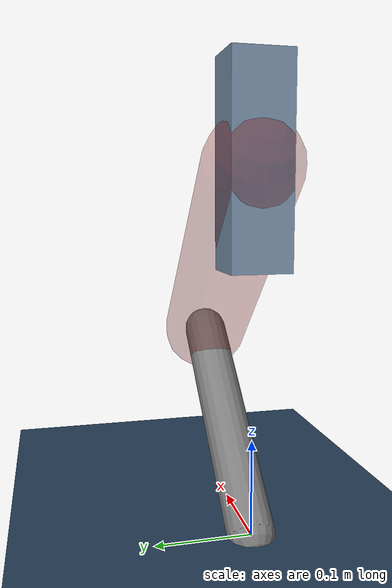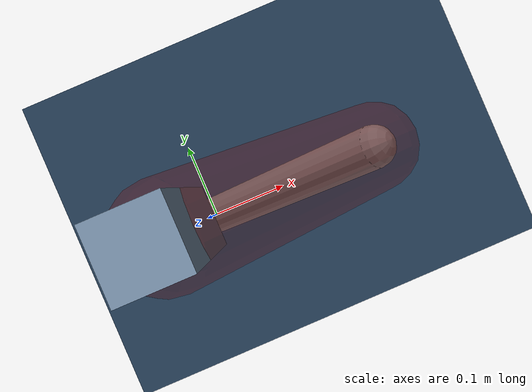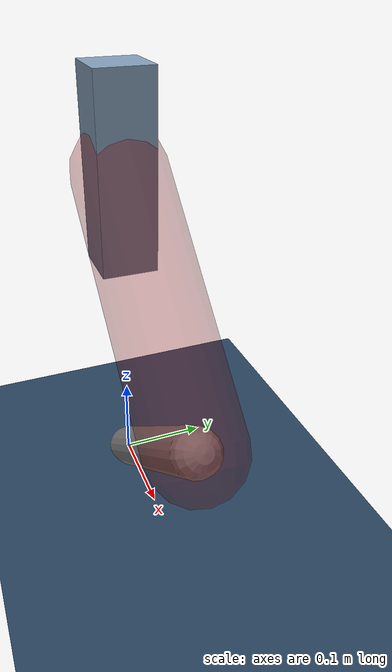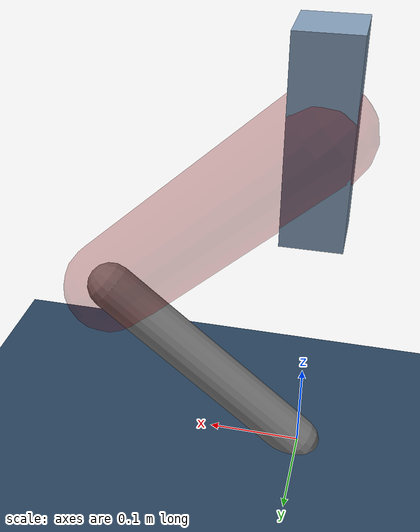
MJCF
<mujoco model="Hopper2D">
	<compiler inertiafromgeom="true" angle="radian" />
	<option timestep="0.001" integrator="implicit" cone="elliptic" solver="Newton" tolerance="1e-10" />

	<default>
		<geom contype="1" conaffinity="1" condim="3" friction="2 0.005 0.0001" solref="0.005 1" />
		<joint limited="true" damping="0.1" />
	</default>

	<asset>
		<texture name="skybox" type="skybox" builtin="gradient" rgb1=".4 .6 .8" rgb2="0 0 0" width="800" height="800" />
		<texture name="grid" type="2d" builtin="checker" rgb1=".1 .2 .3" rgb2=".2 .3 .4" width="300" height="300" mark="edge" markrgb=".2 .3 .4" />
		<material name="ground" texture="grid" texrepeat="1 1" texuniform="true" reflectance="0.1" />
		<material name="leg" rgba="0.5 0.6 0.7 1" />
	</asset>

	<worldbody>

		<geom name="floor" type="plane" size="5 5 0.25" material="ground" />

		<light directional="false" diffuse="0.8 0.8 0.8" specular="0.3 0.3 0.3" pos="0 0 2" dir="0 0 -1" />
		<light mode="targetbodycom" target="base" directional="false" diffuse="0.8 0.8 0.8" specular="0.3 0.3 0.3" pos="0 0 2" dir="0 0 -1" />

		<camera name="fixed" pos="0 -2 1" xyaxes="1 0 0 0 0 1" />
		<camera name="tracking" mode="trackcom" pos="0 -3 1" />

		<body name="root" pos="0 0 0.3702385764134294">
			<joint name="slide_x" type="slide" axis="1 0 0" range="-100 100" />
			<joint name="slide_z" type="slide" axis="0 0 1" range="0 10" />

			<body name="base" pos="0 0 0">
				<geom name="torso" type="box" size="0.03 0.03 0.1" mass="1.607" material="leg" />

				<body name="link1" pos="0 0 0" euler="0 0.7383151694181542 0">
					<joint type="hinge" axis="0 -1 0" pos="0 0 0" name="hinge1" limited="true" range="-3.14 3.14" stiffness="0" damping="0.1" />
					<geom name="thigh" type="capsule" fromto="0 0 0 0.28499555894184797 0 0" size="0.05" rgba="0.5 0 0 0.3" mass="0.9483884532488048" />

					<body name="link2" pos="0.28499555894184797 0 0" euler="0 1.7008300603839548 0">
						<joint type="hinge" axis="0 -1 0" pos="0 0 0" name="hinge2" limited="true" range="-3.14 3.14" stiffness="0" damping="0.1" />
						<geom name="shank" type="capsule" fromto="0 0 0 0.2761612590938977 0 0" size="0.025" mass="0.46402900727511814" />

					</body>
				</body>
			</body>
		</body>
	</worldbody>

	<actuator>
		<motor name="torque1" joint="hinge1" ctrlrange="-24.905266845055383 24.905266845055383" ctrllimited="true" gear="1" />
		<motor name="torque2" joint="hinge2" ctrlrange="-18.79509373646044 18.79509373646044" ctrllimited="true" gear="1" />
	</actuator>
</mujoco>
